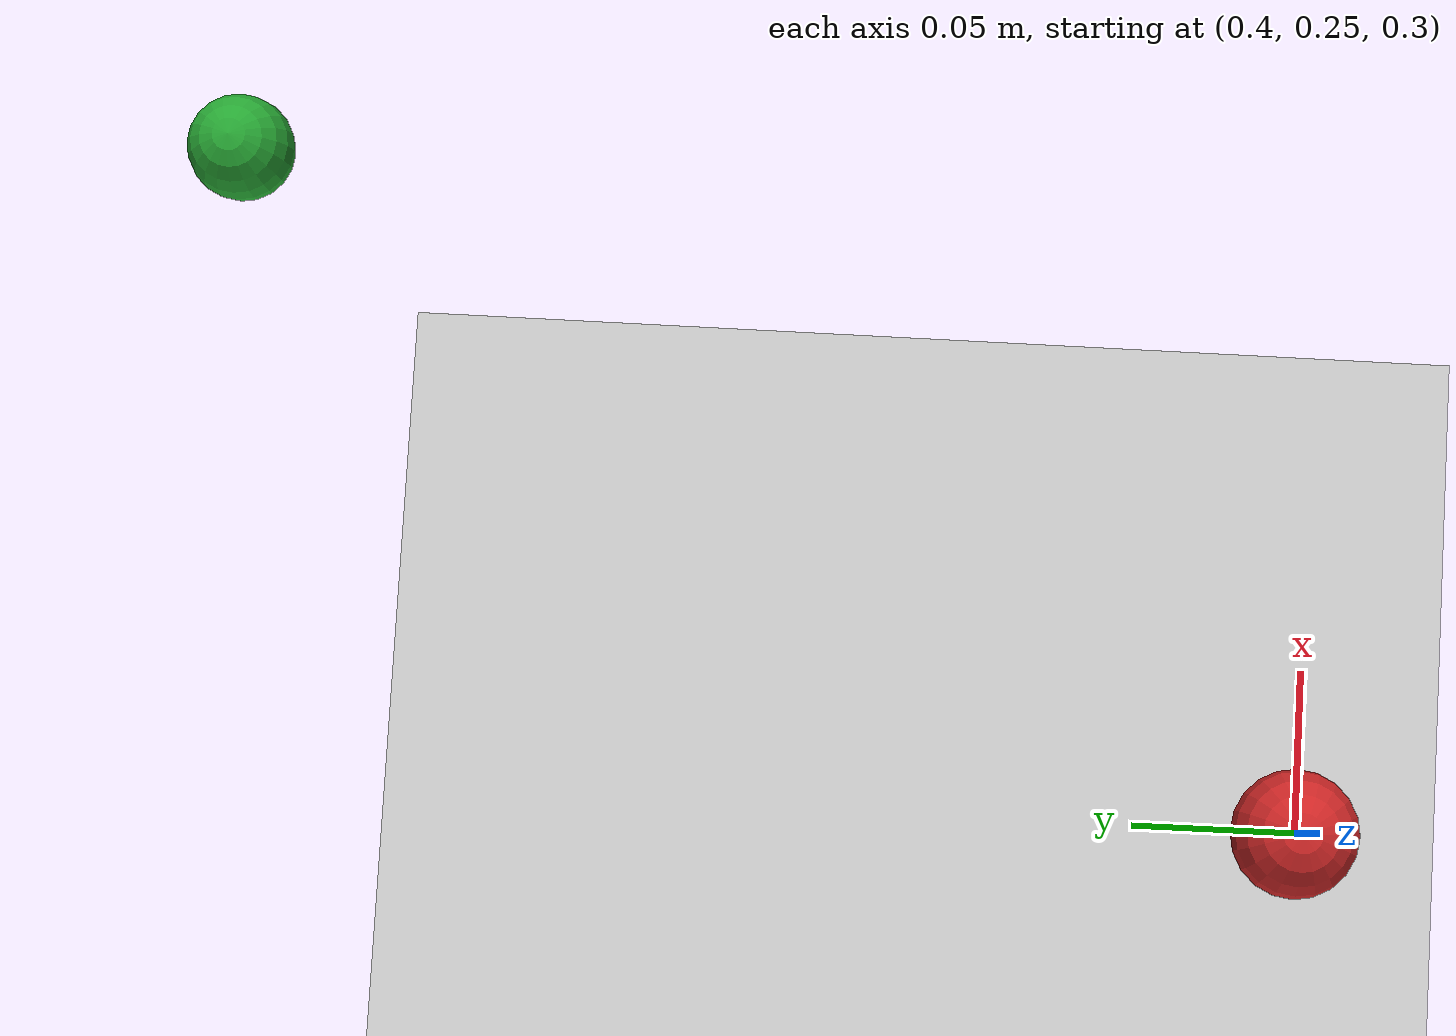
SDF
<?xml version="1.0" ?>
<sdf version="1.6">
  <world name="mppi_world">

    <!-- 1) Basic environment: Sunlight & ground plane -->
    <include>
      <uri>model://sun</uri>
    </include>

    <include>
      <uri>model://ground_plane</uri>
    </include>

    <model name="Obstacle">
      <pose>0.4 0.25 0.3 0 0 0</pose>
      <static>true</static>
      <link name="link">
        <collision name="collision">
          <geometry>
            <sphere>
              <radius>0.02</radius>
            </sphere>
          </geometry>
          <max_contacts>1</max_contacts>
        </collision>
        <visual name="visual">
          <geometry>
            <sphere>
              <radius>0.02</radius>
            </sphere>
          </geometry>
          <!-- Specify material or color -->
          <material>
            <script>
              <uri>file://media/materials/scripts/gazebo.material</uri>
              <name>Gazebo/Red</name>
            </script>
          </material>
        </visual>
      </link>
    </model>

    <model name="Target">
      <pose>0.515 0.5 0.624 0 0 0</pose>
      <static>true</static>
      <link name="link">
        <collision name="collision">
          <geometry>
            <sphere>
              <radius>0.01</radius>
            </sphere>
          </geometry>
        </collision>
        <visual name="visual">
          <geometry>
            <sphere>
              <radius>0.01</radius>
            </sphere>
          </geometry>
          <material>
            <script>
              <uri>file://media/materials/scripts/gazebo.material</uri>
              <name>Gazebo/Green</name>
            </script>
          </material>
        </visual>
      </link>
    </model>

    <!-- 4) Additional world settings (optional) -->
    <physics type="ode">
      <real_time_update_rate>1000</real_time_update_rate>
    </physics>

  </world>
</sdf>
